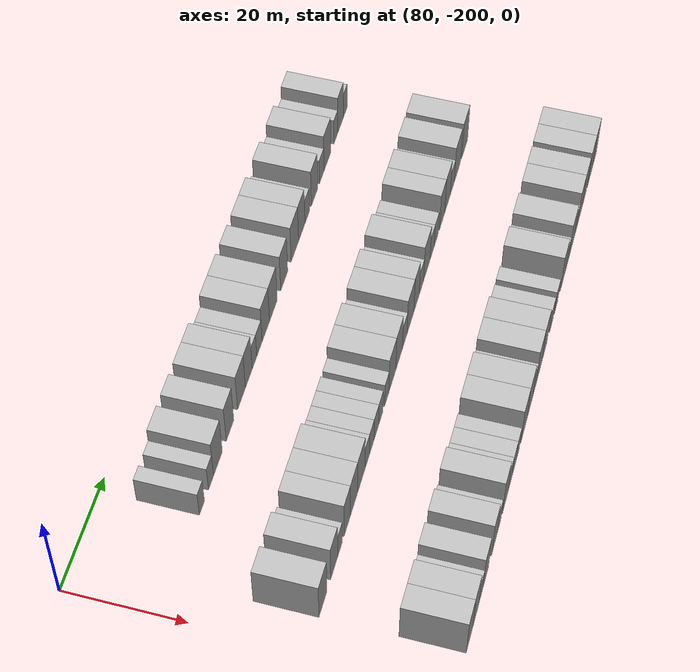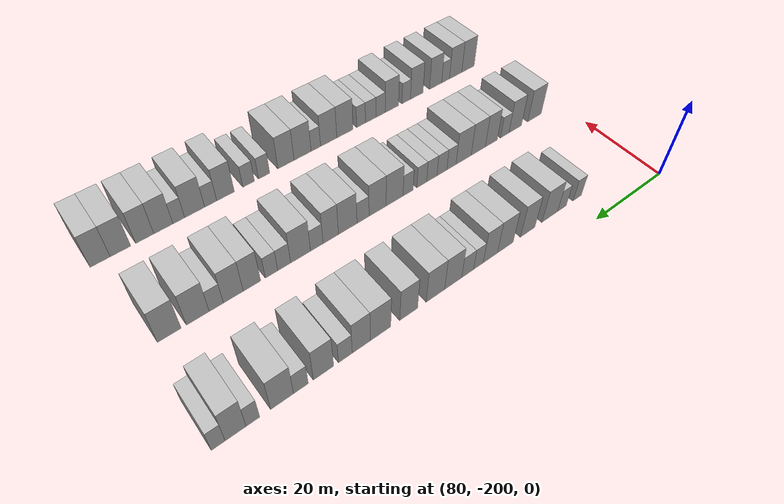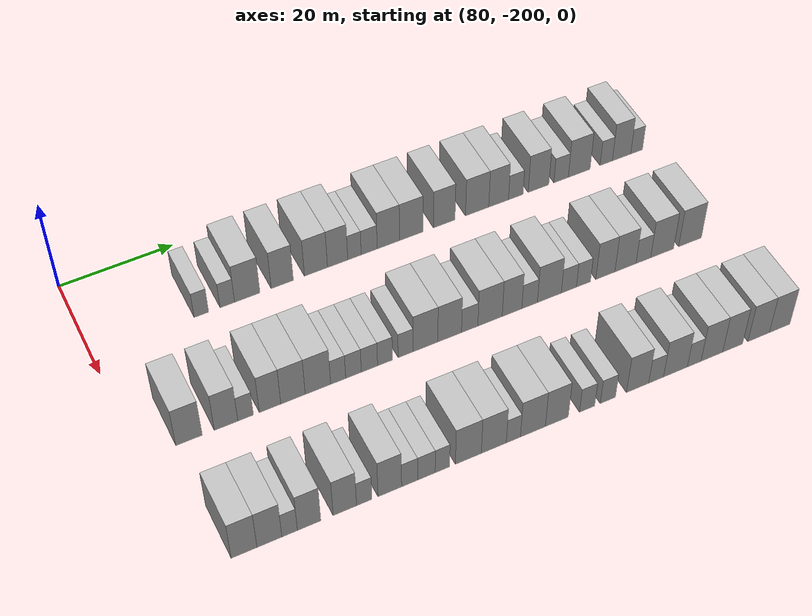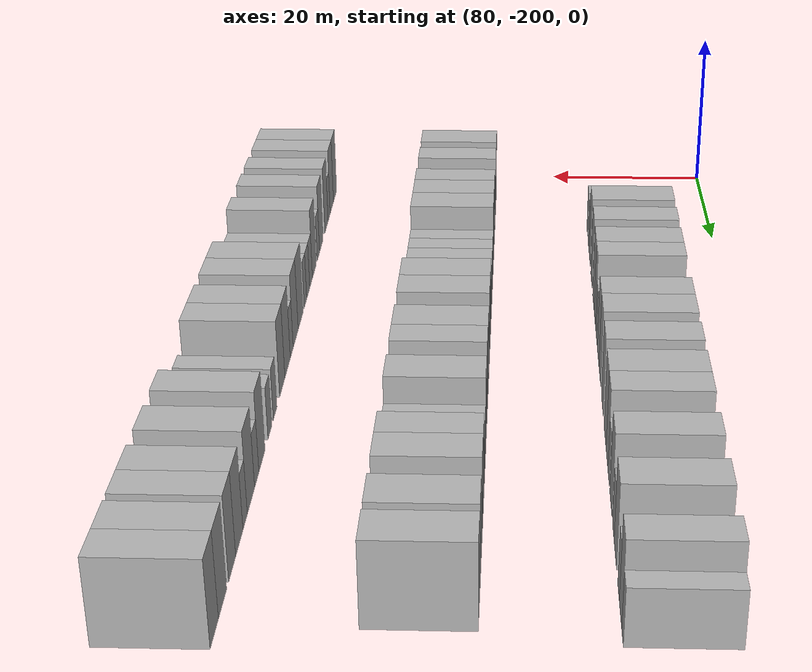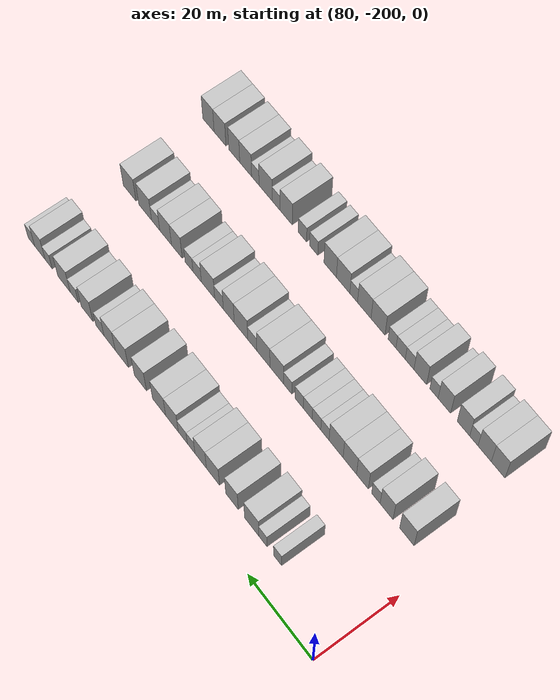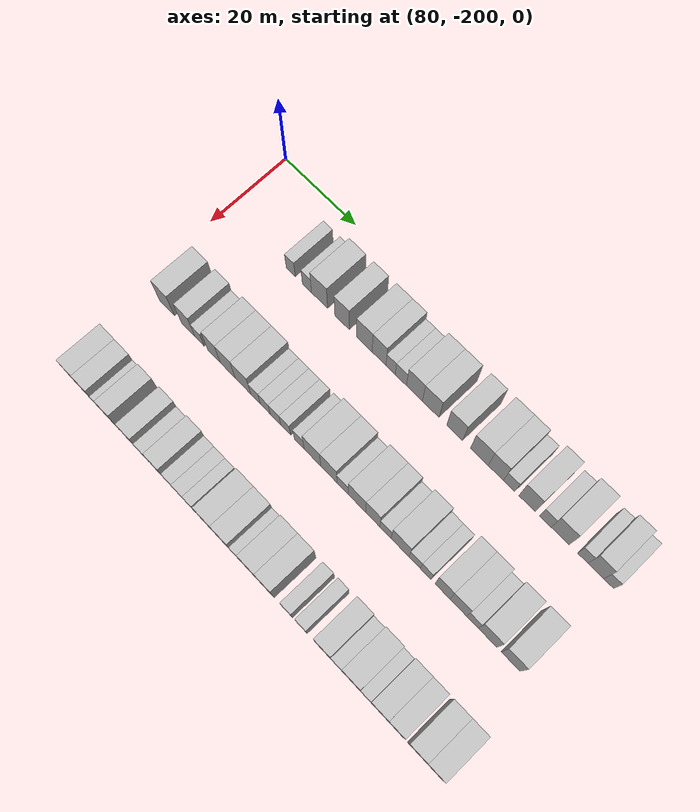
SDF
<sdf version="1.6">
 <world name="default">
  <model name="building_608">
   <static>1</static>
   <pose>91.0000 -181.2008 0 0.000000 0.000000 0.000000</pose>
   <link name="link">
    <pose>0 0 3.00 0 0 0</pose>
    <collision name="collision"><geometry><box><size>10.0000 2.5325 6.0000</size></box></geometry></collision>
    <visual name="visual">
     <cast_shadows>0</cast_shadows>
     <geometry><box><size>10.0000 2.5325 6.0000</size></box></geometry>
     <material>
      <script>
       <uri>model://HANNAS_wall/materials/scripts</uri>
       <uri>model://HANNAS_wall/materials/textures</uri>
       <name>vrc/HANNAS_wall</name>
      </script>
     </material>
    </visual>
   </link>
  </model>
  <model name="building_609">
   <static>1</static>
   <pose>91.0000 -176.6529 0 0.000000 0.000000 0.000000</pose>
   <link name="link">
    <pose>0 0 3.00 0 0 0</pose>
    <collision name="collision"><geometry><box><size>10.0000 2.5633 6.0000</size></box></geometry></collision>
    <visual name="visual">
     <cast_shadows>0</cast_shadows>
     <geometry><box><size>10.0000 2.5633 6.0000</size></box></geometry>
     <material>
      <script>
       <uri>model://HANNAS_wall/materials/scripts</uri>
       <uri>model://HANNAS_wall/materials/textures</uri>
       <name>vrc/HANNAS_wall</name>
      </script>
     </material>
    </visual>
   </link>
  </model>
  <model name="building_610">
   <static>1</static>
   <pose>91.0000 -173.1297 0 0.000000 0.000000 0.000000</pose>
   <link name="link">
    <pose>0 0 4.50 0 0 0</pose>
    <collision name="collision"><geometry><box><size>10.0000 4.4831 9.0000</size></box></geometry></collision>
    <visual name="visual">
     <cast_shadows>0</cast_shadows>
     <geometry><box><size>10.0000 4.4831 9.0000</size></box></geometry>
     <material>
      <script>
       <uri>model://HANNAS_wall/materials/scripts</uri>
       <uri>model://HANNAS_wall/materials/textures</uri>
       <name>vrc/HANNAS_wall</name>
      </script>
     </material>
    </visual>
   </link>
  </model>
  <model name="building_611">
   <static>1</static>
   <pose>91.0000 -166.9022 0 0.000000 0.000000 0.000000</pose>
   <link name="link">
    <pose>0 0 4.50 0 0 0</pose>
    <collision name="collision"><geometry><box><size>10.0000 3.9720 9.0000</size></box></geometry></collision>
    <visual name="visual">
     <cast_shadows>0</cast_shadows>
     <geometry><box><size>10.0000 3.9720 9.0000</size></box></geometry>
     <material>
      <script>
       <uri>model://HANNAS_wall/materials/scripts</uri>
       <uri>model://HANNAS_wall/materials/textures</uri>
       <name>vrc/HANNAS_wall</name>
      </script>
     </material>
    </visual>
   </link>
  </model>
  <model name="building_612">
   <static>1</static>
   <pose>91.0000 -160.8242 0 0.000000 0.000000 0.000000</pose>
   <link name="link">
    <pose>0 0 4.50 0 0 0</pose>
    <collision name="collision"><geometry><box><size>10.0000 4.1842 9.0000</size></box></geometry></collision>
    <visual name="visual">
     <cast_shadows>0</cast_shadows>
     <geometry><box><size>10.0000 4.1842 9.0000</size></box></geometry>
     <material>
      <script>
       <uri>model://HANNAS_wall/materials/scripts</uri>
       <uri>model://HANNAS_wall/materials/textures</uri>
       <name>vrc/HANNAS_wall</name>
      </script>
     </material>
    </visual>
   </link>
  </model>
  <model name="building_613">
   <static>1</static>
   <pose>91.0000 -156.8763 0 0.000000 0.000000 0.000000</pose>
   <link name="link">
    <pose>0 0 4.50 0 0 0</pose>
    <collision name="collision"><geometry><box><size>10.0000 3.7114 9.0000</size></box></geometry></collision>
    <visual name="visual">
     <cast_shadows>0</cast_shadows>
     <geometry><box><size>10.0000 3.7114 9.0000</size></box></geometry>
     <material>
      <script>
       <uri>model://HANNAS_wall/materials/scripts</uri>
       <uri>model://HANNAS_wall/materials/textures</uri>
       <name>vrc/HANNAS_wall</name>
      </script>
     </material>
    </visual>
   </link>
  </model>
  <model name="building_614">
   <static>1</static>
   <pose>91.0000 -153.7820 0 0.000000 0.000000 0.000000</pose>
   <link name="link">
    <pose>0 0 3.00 0 0 0</pose>
    <collision name="collision"><geometry><box><size>10.0000 2.4773 6.0000</size></box></geometry></collision>
    <visual name="visual">
     <cast_shadows>0</cast_shadows>
     <geometry><box><size>10.0000 2.4773 6.0000</size></box></geometry>
     <material>
      <script>
       <uri>model://HANNAS_wall/materials/scripts</uri>
       <uri>model://HANNAS_wall/materials/textures</uri>
       <name>vrc/HANNAS_wall</name>
      </script>
     </material>
    </visual>
   </link>
  </model>
  <model name="building_615">
   <static>1</static>
   <pose>91.0000 -151.0632 0 0.000000 0.000000 0.000000</pose>
   <link name="link">
    <pose>0 0 3.00 0 0 0</pose>
    <collision name="collision"><geometry><box><size>10.0000 2.9602 6.0000</size></box></geometry></collision>
    <visual name="visual">
     <cast_shadows>0</cast_shadows>
     <geometry><box><size>10.0000 2.9602 6.0000</size></box></geometry>
     <material>
      <script>
       <uri>model://HANNAS_wall/materials/scripts</uri>
       <uri>model://HANNAS_wall/materials/textures</uri>
       <name>vrc/HANNAS_wall</name>
      </script>
     </material>
    </visual>
   </link>
  </model>
  <model name="building_616">
   <static>1</static>
   <pose>91.0000 -147.4968 0 0.000000 0.000000 0.000000</pose>
   <link name="link">
    <pose>0 0 4.50 0 0 0</pose>
    <collision name="collision"><geometry><box><size>10.0000 4.1727 9.0000</size></box></geometry></collision>
    <visual name="visual">
     <cast_shadows>0</cast_shadows>
     <geometry><box><size>10.0000 4.1727 9.0000</size></box></geometry>
     <material>
      <script>
       <uri>model://HANNAS_wall/materials/scripts</uri>
       <uri>model://HANNAS_wall/materials/textures</uri>
       <name>vrc/HANNAS_wall</name>
      </script>
     </material>
    </visual>
   </link>
  </model>
  <model name="building_617">
   <static>1</static>
   <pose>91.0000 -143.2257 0 0.000000 0.000000 0.000000</pose>
   <link name="link">
    <pose>0 0 4.50 0 0 0</pose>
    <collision name="collision"><geometry><box><size>10.0000 4.3695 9.0000</size></box></geometry></collision>
    <visual name="visual">
     <cast_shadows>0</cast_shadows>
     <geometry><box><size>10.0000 4.3695 9.0000</size></box></geometry>
     <material>
      <script>
       <uri>model://HANNAS_wall/materials/scripts</uri>
       <uri>model://HANNAS_wall/materials/textures</uri>
       <name>vrc/HANNAS_wall</name>
      </script>
     </material>
    </visual>
   </link>
  </model>
  <model name="building_618">
   <static>1</static>
   <pose>91.0000 -136.9968 0 0.000000 0.000000 0.000000</pose>
   <link name="link">
    <pose>0 0 4.50 0 0 0</pose>
    <collision name="collision"><geometry><box><size>10.0000 4.0883 9.0000</size></box></geometry></collision>
    <visual name="visual">
     <cast_shadows>0</cast_shadows>
     <geometry><box><size>10.0000 4.0883 9.0000</size></box></geometry>
     <material>
      <script>
       <uri>model://HANNAS_wall/materials/scripts</uri>
       <uri>model://HANNAS_wall/materials/textures</uri>
       <name>vrc/HANNAS_wall</name>
      </script>
     </material>
    </visual>
   </link>
  </model>
  <model name="building_619">
   <static>1</static>
   <pose>91.0000 -130.7131 0 0.000000 0.000000 0.000000</pose>
   <link name="link">
    <pose>0 0 4.50 0 0 0</pose>
    <collision name="collision"><geometry><box><size>10.0000 4.4792 9.0000</size></box></geometry></collision>
    <visual name="visual">
     <cast_shadows>0</cast_shadows>
     <geometry><box><size>10.0000 4.4792 9.0000</size></box></geometry>
     <material>
      <script>
       <uri>model://HANNAS_wall/materials/scripts</uri>
       <uri>model://HANNAS_wall/materials/textures</uri>
       <name>vrc/HANNAS_wall</name>
      </script>
     </material>
    </visual>
   </link>
  </model>
  <model name="building_620">
   <static>1</static>
   <pose>91.0000 -126.5605 0 0.000000 0.000000 0.000000</pose>
   <link name="link">
    <pose>0 0 4.50 0 0 0</pose>
    <collision name="collision"><geometry><box><size>10.0000 3.8260 9.0000</size></box></geometry></collision>
    <visual name="visual">
     <cast_shadows>0</cast_shadows>
     <geometry><box><size>10.0000 3.8260 9.0000</size></box></geometry>
     <material>
      <script>
       <uri>model://HANNAS_wall/materials/scripts</uri>
       <uri>model://HANNAS_wall/materials/textures</uri>
       <name>vrc/HANNAS_wall</name>
      </script>
     </material>
    </visual>
   </link>
  </model>
  <model name="building_621">
   <static>1</static>
   <pose>91.0000 -123.2268 0 0.000000 0.000000 0.000000</pose>
   <link name="link">
    <pose>0 0 3.00 0 0 0</pose>
    <collision name="collision"><geometry><box><size>10.0000 2.8414 6.0000</size></box></geometry></collision>
    <visual name="visual">
     <cast_shadows>0</cast_shadows>
     <geometry><box><size>10.0000 2.8414 6.0000</size></box></geometry>
     <material>
      <script>
       <uri>model://HANNAS_wall/materials/scripts</uri>
       <uri>model://HANNAS_wall/materials/textures</uri>
       <name>vrc/HANNAS_wall</name>
      </script>
     </material>
    </visual>
   </link>
  </model>
  <model name="building_622">
   <static>1</static>
   <pose>91.0000 -118.7712 0 0.000000 0.000000 0.000000</pose>
   <link name="link">
    <pose>0 0 4.50 0 0 0</pose>
    <collision name="collision"><geometry><box><size>10.0000 4.0698 9.0000</size></box></geometry></collision>
    <visual name="visual">
     <cast_shadows>0</cast_shadows>
     <geometry><box><size>10.0000 4.0698 9.0000</size></box></geometry>
     <material>
      <script>
       <uri>model://HANNAS_wall/materials/scripts</uri>
       <uri>model://HANNAS_wall/materials/textures</uri>
       <name>vrc/HANNAS_wall</name>
      </script>
     </material>
    </visual>
   </link>
  </model>
  <model name="building_623">
   <static>1</static>
   <pose>91.0000 -114.3045 0 0.000000 0.000000 0.000000</pose>
   <link name="link">
    <pose>0 0 3.00 0 0 0</pose>
    <collision name="collision"><geometry><box><size>10.0000 2.8636 6.0000</size></box></geometry></collision>
    <visual name="visual">
     <cast_shadows>0</cast_shadows>
     <geometry><box><size>10.0000 2.8636 6.0000</size></box></geometry>
     <material>
      <script>
       <uri>model://HANNAS_wall/materials/scripts</uri>
       <uri>model://HANNAS_wall/materials/textures</uri>
       <name>vrc/HANNAS_wall</name>
      </script>
     </material>
    </visual>
   </link>
  </model>
  <model name="building_624">
   <static>1</static>
   <pose>91.0000 -110.6982 0 0.000000 0.000000 0.000000</pose>
   <link name="link">
    <pose>0 0 4.50 0 0 0</pose>
    <collision name="collision"><geometry><box><size>10.0000 4.3491 9.0000</size></box></geometry></collision>
    <visual name="visual">
     <cast_shadows>0</cast_shadows>
     <geometry><box><size>10.0000 4.3491 9.0000</size></box></geometry>
     <material>
      <script>
       <uri>model://HANNAS_wall/materials/scripts</uri>
       <uri>model://HANNAS_wall/materials/textures</uri>
       <name>vrc/HANNAS_wall</name>
      </script>
     </material>
    </visual>
   </link>
  </model>
  <model name="building_625">
   <static>1</static>
   <pose>91.0000 -105.2833 0 0.000000 0.000000 0.000000</pose>
   <link name="link">
    <pose>0 0 3.00 0 0 0</pose>
    <collision name="collision"><geometry><box><size>10.0000 2.4807 6.0000</size></box></geometry></collision>
    <visual name="visual">
     <cast_shadows>0</cast_shadows>
     <geometry><box><size>10.0000 2.4807 6.0000</size></box></geometry>
     <material>
      <script>
       <uri>model://HANNAS_wall/materials/scripts</uri>
       <uri>model://HANNAS_wall/materials/textures</uri>
       <name>vrc/HANNAS_wall</name>
      </script>
     </material>
    </visual>
   </link>
  </model>
  <model name="building_626">
   <static>1</static>
   <pose>91.0000 -102.1800 0 0.000000 0.000000 0.000000</pose>
   <link name="link">
    <pose>0 0 4.50 0 0 0</pose>
    <collision name="collision"><geometry><box><size>10.0000 3.7258 9.0000</size></box></geometry></collision>
    <visual name="visual">
     <cast_shadows>0</cast_shadows>
     <geometry><box><size>10.0000 3.7258 9.0000</size></box></geometry>
     <material>
      <script>
       <uri>model://HANNAS_wall/materials/scripts</uri>
       <uri>model://HANNAS_wall/materials/textures</uri>
       <name>vrc/HANNAS_wall</name>
      </script>
     </material>
    </visual>
   </link>
  </model>
  <model name="building_627">
   <static>1</static>
   <pose>91.0000 -99.1149 0 0.000000 0.000000 0.000000</pose>
   <link name="link">
    <pose>0 0 3.00 0 0 0</pose>
    <collision name="collision"><geometry><box><size>10.0000 2.4045 6.0000</size></box></geometry></collision>
    <visual name="visual">
     <cast_shadows>0</cast_shadows>
     <geometry><box><size>10.0000 2.4045 6.0000</size></box></geometry>
     <material>
      <script>
       <uri>model://HANNAS_wall/materials/scripts</uri>
       <uri>model://HANNAS_wall/materials/textures</uri>
       <name>vrc/HANNAS_wall</name>
      </script>
     </material>
    </visual>
   </link>
  </model>
  <model name="building_790">
   <static>1</static>
   <pose>113.0000 -191.9855 0 0.000000 0.000000 0.000000</pose>
   <link name="link">
    <pose>0 0 4.50 0 0 0</pose>
    <collision name="collision"><geometry><box><size>10.0000 4.3482 9.0000</size></box></geometry></collision>
    <visual name="visual">
     <cast_shadows>0</cast_shadows>
     <geometry><box><size>10.0000 4.3482 9.0000</size></box></geometry>
     <material>
      <script>
       <uri>model://HANNAS_wall/materials/scripts</uri>
       <uri>model://HANNAS_wall/materials/textures</uri>
       <name>vrc/HANNAS_wall</name>
      </script>
     </material>
    </visual>
   </link>
  </model>
  <model name="building_791">
   <static>1</static>
   <pose>113.0000 -185.8587 0 0.000000 0.000000 0.000000</pose>
   <link name="link">
    <pose>0 0 4.50 0 0 0</pose>
    <collision name="collision"><geometry><box><size>10.0000 3.9053 9.0000</size></box></geometry></collision>
    <visual name="visual">
     <cast_shadows>0</cast_shadows>
     <geometry><box><size>10.0000 3.9053 9.0000</size></box></geometry>
     <material>
      <script>
       <uri>model://HANNAS_wall/materials/scripts</uri>
       <uri>model://HANNAS_wall/materials/textures</uri>
       <name>vrc/HANNAS_wall</name>
      </script>
     </material>
    </visual>
   </link>
  </model>
  <model name="building_792">
   <static>1</static>
   <pose>113.0000 -182.6021 0 0.000000 0.000000 0.000000</pose>
   <link name="link">
    <pose>0 0 3.00 0 0 0</pose>
    <collision name="collision"><geometry><box><size>10.0000 2.6078 6.0000</size></box></geometry></collision>
    <visual name="visual">
     <cast_shadows>0</cast_shadows>
     <geometry><box><size>10.0000 2.6078 6.0000</size></box></geometry>
     <material>
      <script>
       <uri>model://HANNAS_wall/materials/scripts</uri>
       <uri>model://HANNAS_wall/materials/textures</uri>
       <name>vrc/HANNAS_wall</name>
      </script>
     </material>
    </visual>
   </link>
  </model>
  <model name="building_793">
   <static>1</static>
   <pose>113.0000 -178.4873 0 0.000000 0.000000 0.000000</pose>
   <link name="link">
    <pose>0 0 4.50 0 0 0</pose>
    <collision name="collision"><geometry><box><size>10.0000 3.6219 9.0000</size></box></geometry></collision>
    <visual name="visual">
     <cast_shadows>0</cast_shadows>
     <geometry><box><size>10.0000 3.6219 9.0000</size></box></geometry>
     <material>
      <script>
       <uri>model://HANNAS_wall/materials/scripts</uri>
       <uri>model://HANNAS_wall/materials/textures</uri>
       <name>vrc/HANNAS_wall</name>
      </script>
     </material>
    </visual>
   </link>
  </model>
  <model name="building_794">
   <static>1</static>
   <pose>113.0000 -174.5948 0 0.000000 0.000000 0.000000</pose>
   <link name="link">
    <pose>0 0 4.50 0 0 0</pose>
    <collision name="collision"><geometry><box><size>10.0000 4.1630 9.0000</size></box></geometry></collision>
    <visual name="visual">
     <cast_shadows>0</cast_shadows>
     <geometry><box><size>10.0000 4.1630 9.0000</size></box></geometry>
     <material>
      <script>
       <uri>model://HANNAS_wall/materials/scripts</uri>
       <uri>model://HANNAS_wall/materials/textures</uri>
       <name>vrc/HANNAS_wall</name>
      </script>
     </material>
    </visual>
   </link>
  </model>
  <model name="building_795">
   <static>1</static>
   <pose>113.0000 -170.3277 0 0.000000 0.000000 0.000000</pose>
   <link name="link">
    <pose>0 0 4.50 0 0 0</pose>
    <collision name="collision"><geometry><box><size>10.0000 4.3713 9.0000</size></box></geometry></collision>
    <visual name="visual">
     <cast_shadows>0</cast_shadows>
     <geometry><box><size>10.0000 4.3713 9.0000</size></box></geometry>
     <material>
      <script>
       <uri>model://HANNAS_wall/materials/scripts</uri>
       <uri>model://HANNAS_wall/materials/textures</uri>
       <name>vrc/HANNAS_wall</name>
      </script>
     </material>
    </visual>
   </link>
  </model>
  <model name="building_796">
   <static>1</static>
   <pose>113.0000 -166.8420 0 0.000000 0.000000 0.000000</pose>
   <link name="link">
    <pose>0 0 3.00 0 0 0</pose>
    <collision name="collision"><geometry><box><size>10.0000 2.6000 6.0000</size></box></geometry></collision>
    <visual name="visual">
     <cast_shadows>0</cast_shadows>
     <geometry><box><size>10.0000 2.6000 6.0000</size></box></geometry>
     <material>
      <script>
       <uri>model://HANNAS_wall/materials/scripts</uri>
       <uri>model://HANNAS_wall/materials/textures</uri>
       <name>vrc/HANNAS_wall</name>
      </script>
     </material>
    </visual>
   </link>
  </model>
  <model name="building_797">
   <static>1</static>
   <pose>113.0000 -164.1796 0 0.000000 0.000000 0.000000</pose>
   <link name="link">
    <pose>0 0 3.00 0 0 0</pose>
    <collision name="collision"><geometry><box><size>10.0000 2.7249 6.0000</size></box></geometry></collision>
    <visual name="visual">
     <cast_shadows>0</cast_shadows>
     <geometry><box><size>10.0000 2.7249 6.0000</size></box></geometry>
     <material>
      <script>
       <uri>model://HANNAS_wall/materials/scripts</uri>
       <uri>model://HANNAS_wall/materials/textures</uri>
       <name>vrc/HANNAS_wall</name>
      </script>
     </material>
    </visual>
   </link>
  </model>
  <model name="building_798">
   <static>1</static>
   <pose>113.0000 -161.3976 0 0.000000 0.000000 0.000000</pose>
   <link name="link">
    <pose>0 0 3.00 0 0 0</pose>
    <collision name="collision"><geometry><box><size>10.0000 2.8390 6.0000</size></box></geometry></collision>
    <visual name="visual">
     <cast_shadows>0</cast_shadows>
     <geometry><box><size>10.0000 2.8390 6.0000</size></box></geometry>
     <material>
      <script>
       <uri>model://HANNAS_wall/materials/scripts</uri>
       <uri>model://HANNAS_wall/materials/textures</uri>
       <name>vrc/HANNAS_wall</name>
      </script>
     </material>
    </visual>
   </link>
  </model>
  <model name="building_799">
   <static>1</static>
   <pose>113.0000 -158.6594 0 0.000000 0.000000 0.000000</pose>
   <link name="link">
    <pose>0 0 3.00 0 0 0</pose>
    <collision name="collision"><geometry><box><size>10.0000 2.6374 6.0000</size></box></geometry></collision>
    <visual name="visual">
     <cast_shadows>0</cast_shadows>
     <geometry><box><size>10.0000 2.6374 6.0000</size></box></geometry>
     <material>
      <script>
       <uri>model://HANNAS_wall/materials/scripts</uri>
       <uri>model://HANNAS_wall/materials/textures</uri>
       <name>vrc/HANNAS_wall</name>
      </script>
     </material>
    </visual>
   </link>
  </model>
  <model name="building_800">
   <static>1</static>
   <pose>113.0000 -155.0207 0 0.000000 0.000000 0.000000</pose>
   <link name="link">
    <pose>0 0 3.00 0 0 0</pose>
    <collision name="collision"><geometry><box><size>10.0000 2.6400 6.0000</size></box></geometry></collision>
    <visual name="visual">
     <cast_shadows>0</cast_shadows>
     <geometry><box><size>10.0000 2.6400 6.0000</size></box></geometry>
     <material>
      <script>
       <uri>model://HANNAS_wall/materials/scripts</uri>
       <uri>model://HANNAS_wall/materials/textures</uri>
       <name>vrc/HANNAS_wall</name>
      </script>
     </material>
    </visual>
   </link>
  </model>
  <model name="building_801">
   <static>1</static>
   <pose>113.0000 -151.4915 0 0.000000 0.000000 0.000000</pose>
   <link name="link">
    <pose>0 0 4.50 0 0 0</pose>
    <collision name="collision"><geometry><box><size>10.0000 4.4185 9.0000</size></box></geometry></collision>
    <visual name="visual">
     <cast_shadows>0</cast_shadows>
     <geometry><box><size>10.0000 4.4185 9.0000</size></box></geometry>
     <material>
      <script>
       <uri>model://HANNAS_wall/materials/scripts</uri>
       <uri>model://HANNAS_wall/materials/textures</uri>
       <name>vrc/HANNAS_wall</name>
      </script>
     </material>
    </visual>
   </link>
  </model>
  <model name="building_802">
   <static>1</static>
   <pose>113.0000 -147.1456 0 0.000000 0.000000 0.000000</pose>
   <link name="link">
    <pose>0 0 4.50 0 0 0</pose>
    <collision name="collision"><geometry><box><size>10.0000 4.2732 9.0000</size></box></geometry></collision>
    <visual name="visual">
     <cast_shadows>0</cast_shadows>
     <geometry><box><size>10.0000 4.2732 9.0000</size></box></geometry>
     <material>
      <script>
       <uri>model://HANNAS_wall/materials/scripts</uri>
       <uri>model://HANNAS_wall/materials/textures</uri>
       <name>vrc/HANNAS_wall</name>
      </script>
     </material>
    </visual>
   </link>
  </model>
  <model name="building_803">
   <static>1</static>
   <pose>113.0000 -143.5298 0 0.000000 0.000000 0.000000</pose>
   <link name="link">
    <pose>0 0 3.00 0 0 0</pose>
    <collision name="collision"><geometry><box><size>10.0000 2.9585 6.0000</size></box></geometry></collision>
    <visual name="visual">
     <cast_shadows>0</cast_shadows>
     <geometry><box><size>10.0000 2.9585 6.0000</size></box></geometry>
     <material>
      <script>
       <uri>model://HANNAS_wall/materials/scripts</uri>
       <uri>model://HANNAS_wall/materials/textures</uri>
       <name>vrc/HANNAS_wall</name>
      </script>
     </material>
    </visual>
   </link>
  </model>
  <model name="building_804">
   <static>1</static>
   <pose>113.0000 -139.8216 0 0.000000 0.000000 0.000000</pose>
   <link name="link">
    <pose>0 0 4.50 0 0 0</pose>
    <collision name="collision"><geometry><box><size>10.0000 4.4579 9.0000</size></box></geometry></collision>
    <visual name="visual">
     <cast_shadows>0</cast_shadows>
     <geometry><box><size>10.0000 4.4579 9.0000</size></box></geometry>
     <material>
      <script>
       <uri>model://HANNAS_wall/materials/scripts</uri>
       <uri>model://HANNAS_wall/materials/textures</uri>
       <name>vrc/HANNAS_wall</name>
      </script>
     </material>
    </visual>
   </link>
  </model>
  <model name="building_805">
   <static>1</static>
   <pose>113.0000 -135.7829 0 0.000000 0.000000 0.000000</pose>
   <link name="link">
    <pose>0 0 4.50 0 0 0</pose>
    <collision name="collision"><geometry><box><size>10.0000 3.6194 9.0000</size></box></geometry></collision>
    <visual name="visual">
     <cast_shadows>0</cast_shadows>
     <geometry><box><size>10.0000 3.6194 9.0000</size></box></geometry>
     <material>
      <script>
       <uri>model://HANNAS_wall/materials/scripts</uri>
       <uri>model://HANNAS_wall/materials/textures</uri>
       <name>vrc/HANNAS_wall</name>
      </script>
     </material>
    </visual>
   </link>
  </model>
  <model name="building_806">
   <static>1</static>
   <pose>113.0000 -132.5308 0 0.000000 0.000000 0.000000</pose>
   <link name="link">
    <pose>0 0 3.00 0 0 0</pose>
    <collision name="collision"><geometry><box><size>10.0000 2.8849 6.0000</size></box></geometry></collision>
    <visual name="visual">
     <cast_shadows>0</cast_shadows>
     <geometry><box><size>10.0000 2.8849 6.0000</size></box></geometry>
     <material>
      <script>
       <uri>model://HANNAS_wall/materials/scripts</uri>
       <uri>model://HANNAS_wall/materials/textures</uri>
       <name>vrc/HANNAS_wall</name>
      </script>
     </material>
    </visual>
   </link>
  </model>
  <model name="building_807">
   <static>1</static>
   <pose>113.0000 -128.8501 0 0.000000 0.000000 0.000000</pose>
   <link name="link">
    <pose>0 0 4.50 0 0 0</pose>
    <collision name="collision"><geometry><box><size>10.0000 4.4764 9.0000</size></box></geometry></collision>
    <visual name="visual">
     <cast_shadows>0</cast_shadows>
     <geometry><box><size>10.0000 4.4764 9.0000</size></box></geometry>
     <material>
      <script>
       <uri>model://HANNAS_wall/materials/scripts</uri>
       <uri>model://HANNAS_wall/materials/textures</uri>
       <name>vrc/HANNAS_wall</name>
      </script>
     </material>
    </visual>
   </link>
  </model>
  <model name="building_808">
   <static>1</static>
   <pose>113.0000 -125.1879 0 0.000000 0.000000 0.000000</pose>
   <link name="link">
    <pose>0 0 3.00 0 0 0</pose>
    <collision name="collision"><geometry><box><size>10.0000 2.8480 6.0000</size></box></geometry></collision>
    <visual name="visual">
     <cast_shadows>0</cast_shadows>
     <geometry><box><size>10.0000 2.8480 6.0000</size></box></geometry>
     <material>
      <script>
       <uri>model://HANNAS_wall/materials/scripts</uri>
       <uri>model://HANNAS_wall/materials/textures</uri>
       <name>vrc/HANNAS_wall</name>
      </script>
     </material>
    </visual>
   </link>
  </model>
  <model name="building_809">
   <static>1</static>
   <pose>113.0000 -122.4275 0 0.000000 0.000000 0.000000</pose>
   <link name="link">
    <pose>0 0 3.00 0 0 0</pose>
    <collision name="collision"><geometry><box><size>10.0000 2.6729 6.0000</size></box></geometry></collision>
    <visual name="visual">
     <cast_shadows>0</cast_shadows>
     <geometry><box><size>10.0000 2.6729 6.0000</size></box></geometry>
     <material>
      <script>
       <uri>model://HANNAS_wall/materials/scripts</uri>
       <uri>model://HANNAS_wall/materials/textures</uri>
       <name>vrc/HANNAS_wall</name>
      </script>
     </material>
    </visual>
   </link>
  </model>
  <model name="building_810">
   <static>1</static>
   <pose>113.0000 -118.2631 0 0.000000 0.000000 0.000000</pose>
   <link name="link">
    <pose>0 0 4.50 0 0 0</pose>
    <collision name="collision"><geometry><box><size>10.0000 3.6558 9.0000</size></box></geometry></collision>
    <visual name="visual">
     <cast_shadows>0</cast_shadows>
     <geometry><box><size>10.0000 3.6558 9.0000</size></box></geometry>
     <material>
      <script>
       <uri>model://HANNAS_wall/materials/scripts</uri>
       <uri>model://HANNAS_wall/materials/textures</uri>
       <name>vrc/HANNAS_wall</name>
      </script>
     </material>
    </visual>
   </link>
  </model>
  <model name="building_811">
   <static>1</static>
   <pose>113.0000 -114.4054 0 0.000000 0.000000 0.000000</pose>
   <link name="link">
    <pose>0 0 4.50 0 0 0</pose>
    <collision name="collision"><geometry><box><size>10.0000 4.0595 9.0000</size></box></geometry></collision>
    <visual name="visual">
     <cast_shadows>0</cast_shadows>
     <geometry><box><size>10.0000 4.0595 9.0000</size></box></geometry>
     <material>
      <script>
       <uri>model://HANNAS_wall/materials/scripts</uri>
       <uri>model://HANNAS_wall/materials/textures</uri>
       <name>vrc/HANNAS_wall</name>
      </script>
     </material>
    </visual>
   </link>
  </model>
  <model name="building_812">
   <static>1</static>
   <pose>113.0000 -110.9566 0 0.000000 0.000000 0.000000</pose>
   <link name="link">
    <pose>0 0 3.00 0 0 0</pose>
    <collision name="collision"><geometry><box><size>10.0000 2.8381 6.0000</size></box></geometry></collision>
    <visual name="visual">
     <cast_shadows>0</cast_shadows>
     <geometry><box><size>10.0000 2.8381 6.0000</size></box></geometry>
     <material>
      <script>
       <uri>model://HANNAS_wall/materials/scripts</uri>
       <uri>model://HANNAS_wall/materials/textures</uri>
       <name>vrc/HANNAS_wall</name>
      </script>
     </material>
    </visual>
   </link>
  </model>
  <model name="building_813">
   <static>1</static>
   <pose>113.0000 -107.3014 0 0.000000 0.000000 0.000000</pose>
   <link name="link">
    <pose>0 0 4.50 0 0 0</pose>
    <collision name="collision"><geometry><box><size>10.0000 4.4723 9.0000</size></box></geometry></collision>
    <visual name="visual">
     <cast_shadows>0</cast_shadows>
     <geometry><box><size>10.0000 4.4723 9.0000</size></box></geometry>
     <material>
      <script>
       <uri>model://HANNAS_wall/materials/scripts</uri>
       <uri>model://HANNAS_wall/materials/textures</uri>
       <name>vrc/HANNAS_wall</name>
      </script>
     </material>
    </visual>
   </link>
  </model>
  <model name="building_814">
   <static>1</static>
   <pose>113.0000 -101.8250 0 0.000000 0.000000 0.000000</pose>
   <link name="link">
    <pose>0 0 4.50 0 0 0</pose>
    <collision name="collision"><geometry><box><size>10.0000 4.4806 9.0000</size></box></geometry></collision>
    <visual name="visual">
     <cast_shadows>0</cast_shadows>
     <geometry><box><size>10.0000 4.4806 9.0000</size></box></geometry>
     <material>
      <script>
       <uri>model://HANNAS_wall/materials/scripts</uri>
       <uri>model://HANNAS_wall/materials/textures</uri>
       <name>vrc/HANNAS_wall</name>
      </script>
     </material>
    </visual>
   </link>
  </model>
  <model name="building_979">
   <static>1</static>
   <pose>135.0000 -192.0155 0 0.000000 0.000000 0.000000</pose>
   <link name="link">
    <pose>0 0 4.50 0 0 0</pose>
    <collision name="collision"><geometry><box><size>10.0000 4.0840 9.0000</size></box></geometry></collision>
    <visual name="visual">
     <cast_shadows>0</cast_shadows>
     <geometry><box><size>10.0000 4.0840 9.0000</size></box></geometry>
     <material>
      <script>
       <uri>model://HANNAS_wall/materials/scripts</uri>
       <uri>model://HANNAS_wall/materials/textures</uri>
       <name>vrc/HANNAS_wall</name>
      </script>
     </material>
    </visual>
   </link>
  </model>
  <model name="building_980">
   <static>1</static>
   <pose>135.0000 -187.9863 0 0.000000 0.000000 0.000000</pose>
   <link name="link">
    <pose>0 0 4.50 0 0 0</pose>
    <collision name="collision"><geometry><box><size>10.0000 3.9743 9.0000</size></box></geometry></collision>
    <visual name="visual">
     <cast_shadows>0</cast_shadows>
     <geometry><box><size>10.0000 3.9743 9.0000</size></box></geometry>
     <material>
      <script>
       <uri>model://HANNAS_wall/materials/scripts</uri>
       <uri>model://HANNAS_wall/materials/textures</uri>
       <name>vrc/HANNAS_wall</name>
      </script>
     </material>
    </visual>
   </link>
  </model>
  <model name="building_981">
   <static>1</static>
   <pose>135.0000 -184.7576 0 0.000000 0.000000 0.000000</pose>
   <link name="link">
    <pose>0 0 3.00 0 0 0</pose>
    <collision name="collision"><geometry><box><size>10.0000 2.4832 6.0000</size></box></geometry></collision>
    <visual name="visual">
     <cast_shadows>0</cast_shadows>
     <geometry><box><size>10.0000 2.4832 6.0000</size></box></geometry>
     <material>
      <script>
       <uri>model://HANNAS_wall/materials/scripts</uri>
       <uri>model://HANNAS_wall/materials/textures</uri>
       <name>vrc/HANNAS_wall</name>
      </script>
     </material>
    </visual>
   </link>
  </model>
  <model name="building_982">
   <static>1</static>
   <pose>135.0000 -181.6236 0 0.000000 0.000000 0.000000</pose>
   <link name="link">
    <pose>0 0 4.50 0 0 0</pose>
    <collision name="collision"><geometry><box><size>10.0000 3.7849 9.0000</size></box></geometry></collision>
    <visual name="visual">
     <cast_shadows>0</cast_shadows>
     <geometry><box><size>10.0000 3.7849 9.0000</size></box></geometry>
     <material>
      <script>
       <uri>model://HANNAS_wall/materials/scripts</uri>
       <uri>model://HANNAS_wall/materials/textures</uri>
       <name>vrc/HANNAS_wall</name>
      </script>
     </material>
    </visual>
   </link>
  </model>
  <model name="building_983">
   <static>1</static>
   <pose>135.0000 -175.8124 0 0.000000 0.000000 0.000000</pose>
   <link name="link">
    <pose>0 0 4.50 0 0 0</pose>
    <collision name="collision"><geometry><box><size>10.0000 3.8374 9.0000</size></box></geometry></collision>
    <visual name="visual">
     <cast_shadows>0</cast_shadows>
     <geometry><box><size>10.0000 3.8374 9.0000</size></box></geometry>
     <material>
      <script>
       <uri>model://HANNAS_wall/materials/scripts</uri>
       <uri>model://HANNAS_wall/materials/textures</uri>
       <name>vrc/HANNAS_wall</name>
      </script>
     </material>
    </visual>
   </link>
  </model>
  <model name="building_984">
   <static>1</static>
   <pose>135.0000 -172.6216 0 0.000000 0.000000 0.000000</pose>
   <link name="link">
    <pose>0 0 3.00 0 0 0</pose>
    <collision name="collision"><geometry><box><size>10.0000 2.5443 6.0000</size></box></geometry></collision>
    <visual name="visual">
     <cast_shadows>0</cast_shadows>
     <geometry><box><size>10.0000 2.5443 6.0000</size></box></geometry>
     <material>
      <script>
       <uri>model://HANNAS_wall/materials/scripts</uri>
       <uri>model://HANNAS_wall/materials/textures</uri>
       <name>vrc/HANNAS_wall</name>
      </script>
     </material>
    </visual>
   </link>
  </model>
  <model name="building_985">
   <static>1</static>
   <pose>135.0000 -168.3870 0 0.000000 0.000000 0.000000</pose>
   <link name="link">
    <pose>0 0 4.50 0 0 0</pose>
    <collision name="collision"><geometry><box><size>10.0000 3.9248 9.0000</size></box></geometry></collision>
    <visual name="visual">
     <cast_shadows>0</cast_shadows>
     <geometry><box><size>10.0000 3.9248 9.0000</size></box></geometry>
     <material>
      <script>
       <uri>model://HANNAS_wall/materials/scripts</uri>
       <uri>model://HANNAS_wall/materials/textures</uri>
       <name>vrc/HANNAS_wall</name>
      </script>
     </material>
    </visual>
   </link>
  </model>
  <model name="building_986">
   <static>1</static>
   <pose>135.0000 -165.0744 0 0.000000 0.000000 0.000000</pose>
   <link name="link">
    <pose>0 0 3.00 0 0 0</pose>
    <collision name="collision"><geometry><box><size>10.0000 2.7005 6.0000</size></box></geometry></collision>
    <visual name="visual">
     <cast_shadows>0</cast_shadows>
     <geometry><box><size>10.0000 2.7005 6.0000</size></box></geometry>
     <material>
      <script>
       <uri>model://HANNAS_wall/materials/scripts</uri>
       <uri>model://HANNAS_wall/materials/textures</uri>
       <name>vrc/HANNAS_wall</name>
      </script>
     </material>
    </visual>
   </link>
  </model>
  <model name="building_987">
   <static>1</static>
   <pose>135.0000 -162.2602 0 0.000000 0.000000 0.000000</pose>
   <link name="link">
    <pose>0 0 3.00 0 0 0</pose>
    <collision name="collision"><geometry><box><size>10.0000 2.9278 6.0000</size></box></geometry></collision>
    <visual name="visual">
     <cast_shadows>0</cast_shadows>
     <geometry><box><size>10.0000 2.9278 6.0000</size></box></geometry>
     <material>
      <script>
       <uri>model://HANNAS_wall/materials/scripts</uri>
       <uri>model://HANNAS_wall/materials/textures</uri>
       <name>vrc/HANNAS_wall</name>
      </script>
     </material>
    </visual>
   </link>
  </model>
  <model name="building_988">
   <static>1</static>
   <pose>135.0000 -159.5730 0 0.000000 0.000000 0.000000</pose>
   <link name="link">
    <pose>0 0 3.00 0 0 0</pose>
    <collision name="collision"><geometry><box><size>10.0000 2.4465 6.0000</size></box></geometry></collision>
    <visual name="visual">
     <cast_shadows>0</cast_shadows>
     <geometry><box><size>10.0000 2.4465 6.0000</size></box></geometry>
     <material>
      <script>
       <uri>model://HANNAS_wall/materials/scripts</uri>
       <uri>model://HANNAS_wall/materials/textures</uri>
       <name>vrc/HANNAS_wall</name>
      </script>
     </material>
    </visual>
   </link>
  </model>
  <model name="building_989">
   <static>1</static>
   <pose>135.0000 -155.1337 0 0.000000 0.000000 0.000000</pose>
   <link name="link">
    <pose>0 0 4.50 0 0 0</pose>
    <collision name="collision"><geometry><box><size>10.0000 4.4320 9.0000</size></box></geometry></collision>
    <visual name="visual">
     <cast_shadows>0</cast_shadows>
     <geometry><box><size>10.0000 4.4320 9.0000</size></box></geometry>
     <material>
      <script>
       <uri>model://HANNAS_wall/materials/scripts</uri>
       <uri>model://HANNAS_wall/materials/textures</uri>
       <name>vrc/HANNAS_wall</name>
      </script>
     </material>
    </visual>
   </link>
  </model>
  <model name="building_990">
   <static>1</static>
   <pose>135.0000 -150.7610 0 0.000000 0.000000 0.000000</pose>
   <link name="link">
    <pose>0 0 4.50 0 0 0</pose>
    <collision name="collision"><geometry><box><size>10.0000 4.3135 9.0000</size></box></geometry></collision>
    <visual name="visual">
     <cast_shadows>0</cast_shadows>
     <geometry><box><size>10.0000 4.3135 9.0000</size></box></geometry>
     <material>
      <script>
       <uri>model://HANNAS_wall/materials/scripts</uri>
       <uri>model://HANNAS_wall/materials/textures</uri>
       <name>vrc/HANNAS_wall</name>
      </script>
     </material>
    </visual>
   </link>
  </model>
  <model name="building_991">
   <static>1</static>
   <pose>135.0000 -147.3713 0 0.000000 0.000000 0.000000</pose>
   <link name="link">
    <pose>0 0 3.00 0 0 0</pose>
    <collision name="collision"><geometry><box><size>10.0000 2.4658 6.0000</size></box></geometry></collision>
    <visual name="visual">
     <cast_shadows>0</cast_shadows>
     <geometry><box><size>10.0000 2.4658 6.0000</size></box></geometry>
     <material>
      <script>
       <uri>model://HANNAS_wall/materials/scripts</uri>
       <uri>model://HANNAS_wall/materials/textures</uri>
       <name>vrc/HANNAS_wall</name>
      </script>
     </material>
    </visual>
   </link>
  </model>
  <model name="building_992">
   <static>1</static>
   <pose>135.0000 -143.9566 0 0.000000 0.000000 0.000000</pose>
   <link name="link">
    <pose>0 0 4.50 0 0 0</pose>
    <collision name="collision"><geometry><box><size>10.0000 4.3635 9.0000</size></box></geometry></collision>
    <visual name="visual">
     <cast_shadows>0</cast_shadows>
     <geometry><box><size>10.0000 4.3635 9.0000</size></box></geometry>
     <material>
      <script>
       <uri>model://HANNAS_wall/materials/scripts</uri>
       <uri>model://HANNAS_wall/materials/textures</uri>
       <name>vrc/HANNAS_wall</name>
      </script>
     </material>
    </visual>
   </link>
  </model>
  <model name="building_993">
   <static>1</static>
   <pose>135.0000 -139.7421 0 0.000000 0.000000 0.000000</pose>
   <link name="link">
    <pose>0 0 4.50 0 0 0</pose>
    <collision name="collision"><geometry><box><size>10.0000 4.0656 9.0000</size></box></geometry></collision>
    <visual name="visual">
     <cast_shadows>0</cast_shadows>
     <geometry><box><size>10.0000 4.0656 9.0000</size></box></geometry>
     <material>
      <script>
       <uri>model://HANNAS_wall/materials/scripts</uri>
       <uri>model://HANNAS_wall/materials/textures</uri>
       <name>vrc/HANNAS_wall</name>
      </script>
     </material>
    </visual>
   </link>
  </model>
  <model name="building_994">
   <static>1</static>
   <pose>135.0000 -134.3513 0 0.000000 0.000000 0.000000</pose>
   <link name="link">
    <pose>0 0 3.00 0 0 0</pose>
    <collision name="collision"><geometry><box><size>10.0000 2.7161 6.0000</size></box></geometry></collision>
    <visual name="visual">
     <cast_shadows>0</cast_shadows>
     <geometry><box><size>10.0000 2.7161 6.0000</size></box></geometry>
     <material>
      <script>
       <uri>model://HANNAS_wall/materials/scripts</uri>
       <uri>model://HANNAS_wall/materials/textures</uri>
       <name>vrc/HANNAS_wall</name>
      </script>
     </material>
    </visual>
   </link>
  </model>
  <model name="building_995">
   <static>1</static>
   <pose>135.0000 -130.6228 0 0.000000 0.000000 0.000000</pose>
   <link name="link">
    <pose>0 0 3.00 0 0 0</pose>
    <collision name="collision"><geometry><box><size>10.0000 2.7408 6.0000</size></box></geometry></collision>
    <visual name="visual">
     <cast_shadows>0</cast_shadows>
     <geometry><box><size>10.0000 2.7408 6.0000</size></box></geometry>
     <material>
      <script>
       <uri>model://HANNAS_wall/materials/scripts</uri>
       <uri>model://HANNAS_wall/materials/textures</uri>
       <name>vrc/HANNAS_wall</name>
      </script>
     </material>
    </visual>
   </link>
  </model>
  <model name="building_996">
   <static>1</static>
   <pose>135.0000 -125.2295 0 0.000000 0.000000 0.000000</pose>
   <link name="link">
    <pose>0 0 4.50 0 0 0</pose>
    <collision name="collision"><geometry><box><size>10.0000 4.0459 9.0000</size></box></geometry></collision>
    <visual name="visual">
     <cast_shadows>0</cast_shadows>
     <geometry><box><size>10.0000 4.0459 9.0000</size></box></geometry>
     <material>
      <script>
       <uri>model://HANNAS_wall/materials/scripts</uri>
       <uri>model://HANNAS_wall/materials/textures</uri>
       <name>vrc/HANNAS_wall</name>
      </script>
     </material>
    </visual>
   </link>
  </model>
  <model name="building_997">
   <static>1</static>
   <pose>135.0000 -121.8438 0 0.000000 0.000000 0.000000</pose>
   <link name="link">
    <pose>0 0 3.00 0 0 0</pose>
    <collision name="collision"><geometry><box><size>10.0000 2.7254 6.0000</size></box></geometry></collision>
    <visual name="visual">
     <cast_shadows>0</cast_shadows>
     <geometry><box><size>10.0000 2.7254 6.0000</size></box></geometry>
     <material>
      <script>
       <uri>model://HANNAS_wall/materials/scripts</uri>
       <uri>model://HANNAS_wall/materials/textures</uri>
       <name>vrc/HANNAS_wall</name>
      </script>
     </material>
    </visual>
   </link>
  </model>
  <model name="building_998">
   <static>1</static>
   <pose>135.0000 -118.2723 0 0.000000 0.000000 0.000000</pose>
   <link name="link">
    <pose>0 0 4.50 0 0 0</pose>
    <collision name="collision"><geometry><box><size>10.0000 4.4176 9.0000</size></box></geometry></collision>
    <visual name="visual">
     <cast_shadows>0</cast_shadows>
     <geometry><box><size>10.0000 4.4176 9.0000</size></box></geometry>
     <material>
      <script>
       <uri>model://HANNAS_wall/materials/scripts</uri>
       <uri>model://HANNAS_wall/materials/textures</uri>
       <name>vrc/HANNAS_wall</name>
      </script>
     </material>
    </visual>
   </link>
  </model>
  <model name="building_999">
   <static>1</static>
   <pose>135.0000 -114.7907 0 0.000000 0.000000 0.000000</pose>
   <link name="link">
    <pose>0 0 3.00 0 0 0</pose>
    <collision name="collision"><geometry><box><size>10.0000 2.5456 6.0000</size></box></geometry></collision>
    <visual name="visual">
     <cast_shadows>0</cast_shadows>
     <geometry><box><size>10.0000 2.5456 6.0000</size></box></geometry>
     <material>
      <script>
       <uri>model://HANNAS_wall/materials/scripts</uri>
       <uri>model://HANNAS_wall/materials/textures</uri>
       <name>vrc/HANNAS_wall</name>
      </script>
     </material>
    </visual>
   </link>
  </model>
  <model name="building_1000">
   <static>1</static>
   <pose>135.0000 -111.4874 0 0.000000 0.000000 0.000000</pose>
   <link name="link">
    <pose>0 0 4.50 0 0 0</pose>
    <collision name="collision"><geometry><box><size>10.0000 4.0611 9.0000</size></box></geometry></collision>
    <visual name="visual">
     <cast_shadows>0</cast_shadows>
     <geometry><box><size>10.0000 4.0611 9.0000</size></box></geometry>
     <material>
      <script>
       <uri>model://HANNAS_wall/materials/scripts</uri>
       <uri>model://HANNAS_wall/materials/textures</uri>
       <name>vrc/HANNAS_wall</name>
      </script>
     </material>
    </visual>
   </link>
  </model>
  <model name="building_1001">
   <static>1</static>
   <pose>135.0000 -107.5698 0 0.000000 0.000000 0.000000</pose>
   <link name="link">
    <pose>0 0 4.50 0 0 0</pose>
    <collision name="collision"><geometry><box><size>10.0000 3.7740 9.0000</size></box></geometry></collision>
    <visual name="visual">
     <cast_shadows>0</cast_shadows>
     <geometry><box><size>10.0000 3.7740 9.0000</size></box></geometry>
     <material>
      <script>
       <uri>model://HANNAS_wall/materials/scripts</uri>
       <uri>model://HANNAS_wall/materials/textures</uri>
       <name>vrc/HANNAS_wall</name>
      </script>
     </material>
    </visual>
   </link>
  </model>
  <model name="building_1002">
   <static>1</static>
   <pose>135.0000 -102.6315 0 0.000000 0.000000 0.000000</pose>
   <link name="link">
    <pose>0 0 4.50 0 0 0</pose>
    <collision name="collision"><geometry><box><size>10.0000 4.1027 9.0000</size></box></geometry></collision>
    <visual name="visual">
     <cast_shadows>0</cast_shadows>
     <geometry><box><size>10.0000 4.1027 9.0000</size></box></geometry>
     <material>
      <script>
       <uri>model://HANNAS_wall/materials/scripts</uri>
       <uri>model://HANNAS_wall/materials/textures</uri>
       <name>vrc/HANNAS_wall</name>
      </script>
     </material>
    </visual>
   </link>
  </model>
  <model name="building_1003">
   <static>1</static>
   <pose>135.0000 -98.5986 0 0.000000 0.000000 0.000000</pose>
   <link name="link">
    <pose>0 0 4.50 0 0 0</pose>
    <collision name="collision"><geometry><box><size>10.0000 3.9630 9.0000</size></box></geometry></collision>
    <visual name="visual">
     <cast_shadows>0</cast_shadows>
     <geometry><box><size>10.0000 3.9630 9.0000</size></box></geometry>
     <material>
      <script>
       <uri>model://HANNAS_wall/materials/scripts</uri>
       <uri>model://HANNAS_wall/materials/textures</uri>
       <name>vrc/HANNAS_wall</name>
      </script>
     </material>
    </visual>
   </link>
  </model>
 </world>
</sdf>
